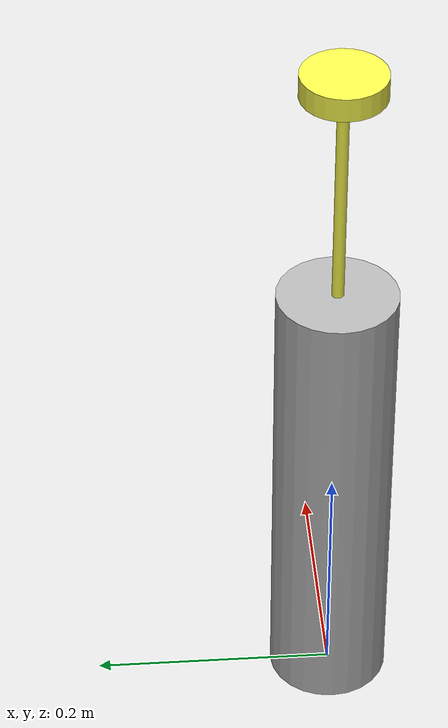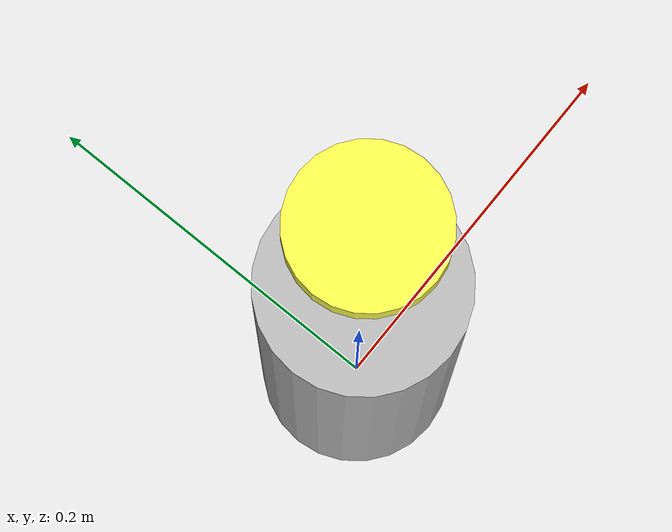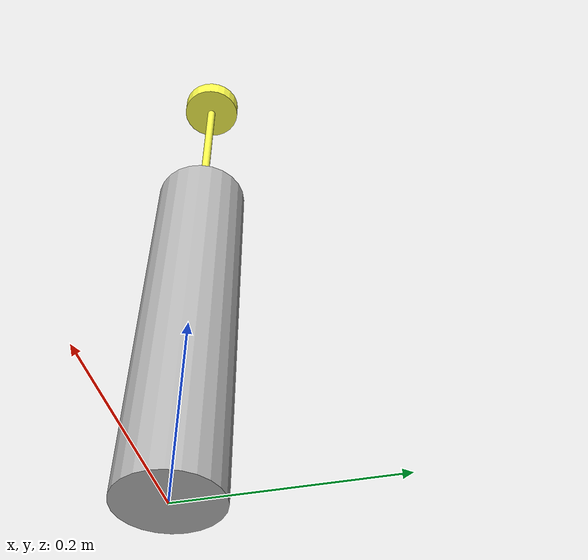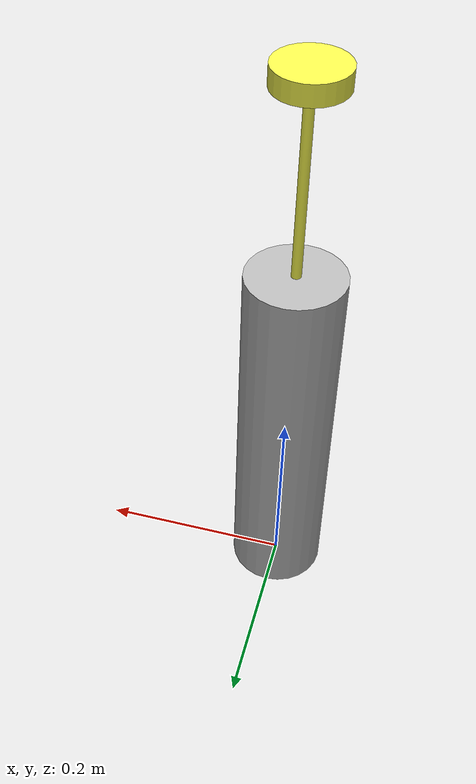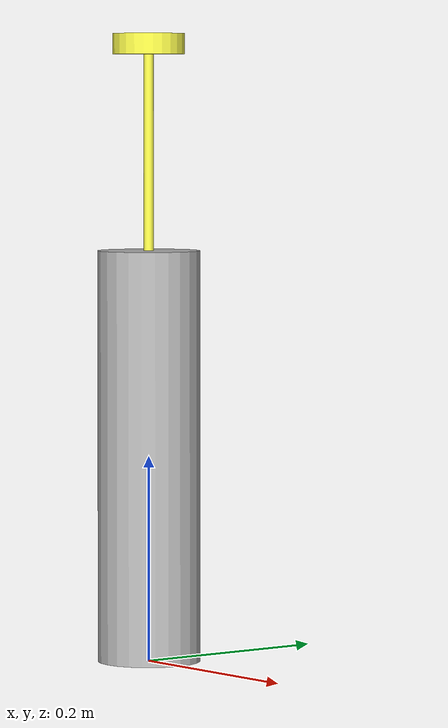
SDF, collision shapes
<?xml version='1.0'?>
<sdf version='1.5'>
  <model name="grape">
     <static>false</static>
    <link name="body">
      <pose>0 0 0.2 0 0 0</pose>

      <collision name="collision">
        <geometry>
          <cylinder>
            <radius>.05</radius>
            <length>.40</length>
          </cylinder>
        </geometry>
      </collision>

      <visual name="visual">
        <geometry>
        <mesh>
          <uri>/home/samleong/gazebo_models/grape/model.dae</uri>
 	   <scale>2.0 2.0 2.0</scale>
        </mesh>
      </geometry>
      </visual>
    </link>

    <link name="vine">
        <pose>0 0 0.50 0 0 0</pose>
        <collision name="collision">
          <geometry>
            <cylinder>
              <radius>.005</radius>
              <length>.20</length>
            </cylinder>
          </geometry>
        </collision>
        <visual name="visual">
          <geometry>
            <cylinder>
              <radius>.005</radius>
              <length>.20</length>
            </cylinder>
          </geometry>
 	<material>
          <ambient>0 0 0 1</ambient>
          <diffuse>1 1 0.3 1</diffuse>
          <specular>0 0 0 0</specular>
          <emissive>0 0 0 1</emissive>
        </material>
        </visual>
      </link>
    <link name="head">
        <pose>0 0 0.60 0 0 0</pose>
        <collision name="collision">
          <geometry>
            <cylinder>
              <radius>.035</radius>
              <length>.02</length>
            </cylinder>
          </geometry>
        </collision>
        <visual name="visual">
          <geometry>
            <cylinder>
              <radius>.035</radius>
              <length>.02</length>
            </cylinder>
          </geometry>
 	<material>
          <ambient>0 0 0 1</ambient>
          <diffuse>1 1 0.3 1</diffuse>
          <specular>0 0 0 0</specular>
          <emissive>0 0 0 1</emissive>
        </material>
        </visual>
      </link>
      <joint type="fixed" name="vine_joint">
        <pose>0 0 0.1 0 0 0</pose>
        <child>vine</child>
        <parent>body</parent>
        <axis>
          <xyz>0 0 1</xyz>
        </axis>
      </joint>

      <joint type="fixed" name="head_joint">
        <pose>0 0 0.03 0 0 0</pose>
        <child>head</child>
        <parent>vine</parent>
        <axis>
          <xyz>0 0 1</xyz>
        </axis>
      </joint>
  </model>
 </sdf>
